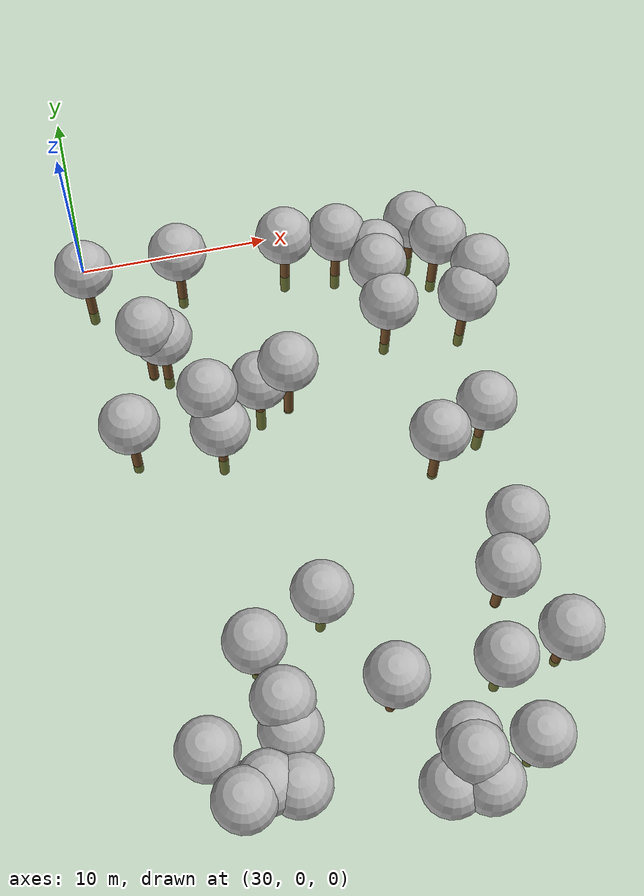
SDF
<sdf version="1.5">
 <world name="default">
  <model name="tree_simple473">
   <static>1</static>
   <link name="link">
    <pose>0 0 0.1 0 -0 0</pose>
    <collision name="collision_trunk">
     <pose>0 0 2 0 -0 0</pose>
     <geometry><cylinder><radius>0.25</radius><length>4</length></cylinder></geometry>
    </collision>
    <collision name="collision_treetop">
     <pose>0 0 5.2 0 -0 0</pose>
     <geometry><sphere><radius>1.5</radius></sphere></geometry>
    </collision>
    <visual name="trunk">
     <pose>0 0 2 0 -0 0</pose>
     <geometry><cylinder><radius>0.25</radius><length>4</length></cylinder></geometry>
     <material>
      <script>
       <uri>model://tree_simple/scripts</uri>
       <uri>model://tree_simple/materials/textures</uri>
       <name>TreeSimple/Trunk</name>
      </script>
     </material>
    </visual>
    <visual name="treetop">
     <pose>0 0 5.2 0 -0 0</pose>
     <geometry><sphere><radius>1.5</radius></sphere></geometry>
     <material>
      <script>
       <uri>model://tree_simple/scripts</uri>
       <uri>model://tree_simple/materials/textures</uri>
       <name>TreeSimple/Treetop</name>
      </script>
     </material>
    </visual>
   </link>
   <pose>35.3600050295 -12.4568326028 -1.7473180829373098 0 -0 0</pose>
  </model>
  <model name="tree_simple468">
   <static>1</static>
   <link name="link">
    <pose>0 0 0.1 0 -0 0</pose>
    <collision name="collision_trunk">
     <pose>0 0 2 0 -0 0</pose>
     <geometry><cylinder><radius>0.25</radius><length>4</length></cylinder></geometry>
    </collision>
    <collision name="collision_treetop">
     <pose>0 0 5.2 0 -0 0</pose>
     <geometry><sphere><radius>1.5</radius></sphere></geometry>
    </collision>
    <visual name="trunk">
     <pose>0 0 2 0 -0 0</pose>
     <geometry><cylinder><radius>0.25</radius><length>4</length></cylinder></geometry>
     <material>
      <script>
       <uri>model://tree_simple/scripts</uri>
       <uri>model://tree_simple/materials/textures</uri>
       <name>TreeSimple/Trunk</name>
      </script>
     </material>
    </visual>
    <visual name="treetop">
     <pose>0 0 5.2 0 -0 0</pose>
     <geometry><sphere><radius>1.5</radius></sphere></geometry>
     <material>
      <script>
       <uri>model://tree_simple/scripts</uri>
       <uri>model://tree_simple/materials/textures</uri>
       <name>TreeSimple/Treetop</name>
      </script>
     </material>
    </visual>
   </link>
   <pose>33.4354348071 -7.20044037788 -1.1774211655421292 0 -0 0</pose>
  </model>
  <model name="tree_simple461">
   <static>1</static>
   <link name="link">
    <pose>0 0 0.1 0 -0 0</pose>
    <collision name="collision_trunk">
     <pose>0 0 2 0 -0 0</pose>
     <geometry><cylinder><radius>0.25</radius><length>4</length></cylinder></geometry>
    </collision>
    <collision name="collision_treetop">
     <pose>0 0 5.2 0 -0 0</pose>
     <geometry><sphere><radius>1.5</radius></sphere></geometry>
    </collision>
    <visual name="trunk">
     <pose>0 0 2 0 -0 0</pose>
     <geometry><cylinder><radius>0.25</radius><length>4</length></cylinder></geometry>
     <material>
      <script>
       <uri>model://tree_simple/scripts</uri>
       <uri>model://tree_simple/materials/textures</uri>
       <name>TreeSimple/Trunk</name>
      </script>
     </material>
    </visual>
    <visual name="treetop">
     <pose>0 0 5.2 0 -0 0</pose>
     <geometry><sphere><radius>1.5</radius></sphere></geometry>
     <material>
      <script>
       <uri>model://tree_simple/scripts</uri>
       <uri>model://tree_simple/materials/textures</uri>
       <name>TreeSimple/Treetop</name>
      </script>
     </material>
    </visual>
   </link>
   <pose>48.4583895912 -13.8275705943 -1.654358973895734 0 -0 0</pose>
  </model>
  <model name="tree_simple400">
   <static>1</static>
   <link name="link">
    <pose>0 0 0.1 0 -0 0</pose>
    <collision name="collision_trunk">
     <pose>0 0 2 0 -0 0</pose>
     <geometry><cylinder><radius>0.25</radius><length>4</length></cylinder></geometry>
    </collision>
    <collision name="collision_treetop">
     <pose>0 0 5.2 0 -0 0</pose>
     <geometry><sphere><radius>1.5</radius></sphere></geometry>
    </collision>
    <visual name="trunk">
     <pose>0 0 2 0 -0 0</pose>
     <geometry><cylinder><radius>0.25</radius><length>4</length></cylinder></geometry>
     <material>
      <script>
       <uri>model://tree_simple/scripts</uri>
       <uri>model://tree_simple/materials/textures</uri>
       <name>TreeSimple/Trunk</name>
      </script>
     </material>
    </visual>
    <visual name="treetop">
     <pose>0 0 5.2 0 -0 0</pose>
     <geometry><sphere><radius>1.5</radius></sphere></geometry>
     <material>
      <script>
       <uri>model://tree_simple/scripts</uri>
       <uri>model://tree_simple/materials/textures</uri>
       <name>TreeSimple/Treetop</name>
      </script>
     </material>
    </visual>
   </link>
   <pose>43.2651902792 -29.893141503 -1.1628689047305 0 -0 0</pose>
  </model>
  <model name="tree_simple391">
   <static>1</static>
   <link name="link">
    <pose>0 0 0.1 0 -0 0</pose>
    <collision name="collision_trunk">
     <pose>0 0 2 0 -0 0</pose>
     <geometry><cylinder><radius>0.25</radius><length>4</length></cylinder></geometry>
    </collision>
    <collision name="collision_treetop">
     <pose>0 0 5.2 0 -0 0</pose>
     <geometry><sphere><radius>1.5</radius></sphere></geometry>
    </collision>
    <visual name="trunk">
     <pose>0 0 2 0 -0 0</pose>
     <geometry><cylinder><radius>0.25</radius><length>4</length></cylinder></geometry>
     <material>
      <script>
       <uri>model://tree_simple/scripts</uri>
       <uri>model://tree_simple/materials/textures</uri>
       <name>TreeSimple/Trunk</name>
      </script>
     </material>
    </visual>
    <visual name="treetop">
     <pose>0 0 5.2 0 -0 0</pose>
     <geometry><sphere><radius>1.5</radius></sphere></geometry>
     <material>
      <script>
       <uri>model://tree_simple/scripts</uri>
       <uri>model://tree_simple/materials/textures</uri>
       <name>TreeSimple/Treetop</name>
      </script>
     </material>
    </visual>
   </link>
   <pose>35.0521422103 -11.0450283788 -0.3370518035027943 0 -0 0</pose>
  </model>
  <model name="tree_simple390">
   <static>1</static>
   <link name="link">
    <pose>0 0 0.1 0 -0 0</pose>
    <collision name="collision_trunk">
     <pose>0 0 2 0 -0 0</pose>
     <geometry><cylinder><radius>0.25</radius><length>4</length></cylinder></geometry>
    </collision>
    <collision name="collision_treetop">
     <pose>0 0 5.2 0 -0 0</pose>
     <geometry><sphere><radius>1.5</radius></sphere></geometry>
    </collision>
    <visual name="trunk">
     <pose>0 0 2 0 -0 0</pose>
     <geometry><cylinder><radius>0.25</radius><length>4</length></cylinder></geometry>
     <material>
      <script>
       <uri>model://tree_simple/scripts</uri>
       <uri>model://tree_simple/materials/textures</uri>
       <name>TreeSimple/Trunk</name>
      </script>
     </material>
    </visual>
    <visual name="treetop">
     <pose>0 0 5.2 0 -0 0</pose>
     <geometry><sphere><radius>1.5</radius></sphere></geometry>
     <material>
      <script>
       <uri>model://tree_simple/scripts</uri>
       <uri>model://tree_simple/materials/textures</uri>
       <name>TreeSimple/Treetop</name>
      </script>
     </material>
    </visual>
   </link>
   <pose>34.8279648661 -23.7978261523 -0.8690335172781292 0 -0 0</pose>
  </model>
  <model name="tree_simple385">
   <static>1</static>
   <link name="link">
    <pose>0 0 0.1 0 -0 0</pose>
    <collision name="collision_trunk">
     <pose>0 0 2 0 -0 0</pose>
     <geometry><cylinder><radius>0.25</radius><length>4</length></cylinder></geometry>
    </collision>
    <collision name="collision_treetop">
     <pose>0 0 5.2 0 -0 0</pose>
     <geometry><sphere><radius>1.5</radius></sphere></geometry>
    </collision>
    <visual name="trunk">
     <pose>0 0 2 0 -0 0</pose>
     <geometry><cylinder><radius>0.25</radius><length>4</length></cylinder></geometry>
     <material>
      <script>
       <uri>model://tree_simple/scripts</uri>
       <uri>model://tree_simple/materials/textures</uri>
       <name>TreeSimple/Trunk</name>
      </script>
     </material>
    </visual>
    <visual name="treetop">
     <pose>0 0 5.2 0 -0 0</pose>
     <geometry><sphere><radius>1.5</radius></sphere></geometry>
     <material>
      <script>
       <uri>model://tree_simple/scripts</uri>
       <uri>model://tree_simple/materials/textures</uri>
       <name>TreeSimple/Treetop</name>
      </script>
     </material>
    </visual>
   </link>
   <pose>32.6946046779 -7.01468529962 -0.2769315704886326 0 -0 0</pose>
  </model>
  <model name="tree_simple380">
   <static>1</static>
   <link name="link">
    <pose>0 0 0.1 0 -0 0</pose>
    <collision name="collision_trunk">
     <pose>0 0 2 0 -0 0</pose>
     <geometry><cylinder><radius>0.25</radius><length>4</length></cylinder></geometry>
    </collision>
    <collision name="collision_treetop">
     <pose>0 0 5.2 0 -0 0</pose>
     <geometry><sphere><radius>1.5</radius></sphere></geometry>
    </collision>
    <visual name="trunk">
     <pose>0 0 2 0 -0 0</pose>
     <geometry><cylinder><radius>0.25</radius><length>4</length></cylinder></geometry>
     <material>
      <script>
       <uri>model://tree_simple/scripts</uri>
       <uri>model://tree_simple/materials/textures</uri>
       <name>TreeSimple/Trunk</name>
      </script>
     </material>
    </visual>
    <visual name="treetop">
     <pose>0 0 5.2 0 -0 0</pose>
     <geometry><sphere><radius>1.5</radius></sphere></geometry>
     <material>
      <script>
       <uri>model://tree_simple/scripts</uri>
       <uri>model://tree_simple/materials/textures</uri>
       <name>TreeSimple/Treetop</name>
      </script>
     </material>
    </visual>
   </link>
   <pose>49.0222625073 -7.79616728684 -1.293689427197087 0 -0 0</pose>
  </model>
  <model name="tree_simple379">
   <static>1</static>
   <link name="link">
    <pose>0 0 0.1 0 -0 0</pose>
    <collision name="collision_trunk">
     <pose>0 0 2 0 -0 0</pose>
     <geometry><cylinder><radius>0.25</radius><length>4</length></cylinder></geometry>
    </collision>
    <collision name="collision_treetop">
     <pose>0 0 5.2 0 -0 0</pose>
     <geometry><sphere><radius>1.5</radius></sphere></geometry>
    </collision>
    <visual name="trunk">
     <pose>0 0 2 0 -0 0</pose>
     <geometry><cylinder><radius>0.25</radius><length>4</length></cylinder></geometry>
     <material>
      <script>
       <uri>model://tree_simple/scripts</uri>
       <uri>model://tree_simple/materials/textures</uri>
       <name>TreeSimple/Trunk</name>
      </script>
     </material>
    </visual>
    <visual name="treetop">
     <pose>0 0 5.2 0 -0 0</pose>
     <geometry><sphere><radius>1.5</radius></sphere></geometry>
     <material>
      <script>
       <uri>model://tree_simple/scripts</uri>
       <uri>model://tree_simple/materials/textures</uri>
       <name>TreeSimple/Treetop</name>
      </script>
     </material>
    </visual>
   </link>
   <pose>35.6338366469 -27.9469397224 -1.4886823676596321 0 -0 0</pose>
  </model>
  <model name="tree_simple374">
   <static>1</static>
   <link name="link">
    <pose>0 0 0.1 0 -0 0</pose>
    <collision name="collision_trunk">
     <pose>0 0 2 0 -0 0</pose>
     <geometry><cylinder><radius>0.25</radius><length>4</length></cylinder></geometry>
    </collision>
    <collision name="collision_treetop">
     <pose>0 0 5.2 0 -0 0</pose>
     <geometry><sphere><radius>1.5</radius></sphere></geometry>
    </collision>
    <visual name="trunk">
     <pose>0 0 2 0 -0 0</pose>
     <geometry><cylinder><radius>0.25</radius><length>4</length></cylinder></geometry>
     <material>
      <script>
       <uri>model://tree_simple/scripts</uri>
       <uri>model://tree_simple/materials/textures</uri>
       <name>TreeSimple/Trunk</name>
      </script>
     </material>
    </visual>
    <visual name="treetop">
     <pose>0 0 5.2 0 -0 0</pose>
     <geometry><sphere><radius>1.5</radius></sphere></geometry>
     <material>
      <script>
       <uri>model://tree_simple/scripts</uri>
       <uri>model://tree_simple/materials/textures</uri>
       <name>TreeSimple/Treetop</name>
      </script>
     </material>
    </visual>
   </link>
   <pose>45.5880490305 -15.4743351493 -0.4629393614431617 0 -0 0</pose>
  </model>
  <model name="tree_simple361">
   <static>1</static>
   <link name="link">
    <pose>0 0 0.1 0 -0 0</pose>
    <collision name="collision_trunk">
     <pose>0 0 2 0 -0 0</pose>
     <geometry><cylinder><radius>0.25</radius><length>4</length></cylinder></geometry>
    </collision>
    <collision name="collision_treetop">
     <pose>0 0 5.2 0 -0 0</pose>
     <geometry><sphere><radius>1.5</radius></sphere></geometry>
    </collision>
    <visual name="trunk">
     <pose>0 0 2 0 -0 0</pose>
     <geometry><cylinder><radius>0.25</radius><length>4</length></cylinder></geometry>
     <material>
      <script>
       <uri>model://tree_simple/scripts</uri>
       <uri>model://tree_simple/materials/textures</uri>
       <name>TreeSimple/Trunk</name>
      </script>
     </material>
    </visual>
    <visual name="treetop">
     <pose>0 0 5.2 0 -0 0</pose>
     <geometry><sphere><radius>1.5</radius></sphere></geometry>
     <material>
      <script>
       <uri>model://tree_simple/scripts</uri>
       <uri>model://tree_simple/materials/textures</uri>
       <name>TreeSimple/Treetop</name>
      </script>
     </material>
    </visual>
   </link>
   <pose>35.5366757962 -26.7239082098 -0.6757971522444024 0 -0 0</pose>
  </model>
  <model name="tree_simple352">
   <static>1</static>
   <link name="link">
    <pose>0 0 0.1 0 -0 0</pose>
    <collision name="collision_trunk">
     <pose>0 0 2 0 -0 0</pose>
     <geometry><cylinder><radius>0.25</radius><length>4</length></cylinder></geometry>
    </collision>
    <collision name="collision_treetop">
     <pose>0 0 5.2 0 -0 0</pose>
     <geometry><sphere><radius>1.5</radius></sphere></geometry>
    </collision>
    <visual name="trunk">
     <pose>0 0 2 0 -0 0</pose>
     <geometry><cylinder><radius>0.25</radius><length>4</length></cylinder></geometry>
     <material>
      <script>
       <uri>model://tree_simple/scripts</uri>
       <uri>model://tree_simple/materials/textures</uri>
       <name>TreeSimple/Trunk</name>
      </script>
     </material>
    </visual>
    <visual name="treetop">
     <pose>0 0 5.2 0 -0 0</pose>
     <geometry><sphere><radius>1.5</radius></sphere></geometry>
     <material>
      <script>
       <uri>model://tree_simple/scripts</uri>
       <uri>model://tree_simple/materials/textures</uri>
       <name>TreeSimple/Treetop</name>
      </script>
     </material>
    </visual>
   </link>
   <pose>37.7714253308 -10.085576638 -2.2345839710820794 0 -0 0</pose>
  </model>
  <model name="tree_simple330">
   <static>1</static>
   <link name="link">
    <pose>0 0 0.1 0 -0 0</pose>
    <collision name="collision_trunk">
     <pose>0 0 2 0 -0 0</pose>
     <geometry><cylinder><radius>0.25</radius><length>4</length></cylinder></geometry>
    </collision>
    <collision name="collision_treetop">
     <pose>0 0 5.2 0 -0 0</pose>
     <geometry><sphere><radius>1.5</radius></sphere></geometry>
    </collision>
    <visual name="trunk">
     <pose>0 0 2 0 -0 0</pose>
     <geometry><cylinder><radius>0.25</radius><length>4</length></cylinder></geometry>
     <material>
      <script>
       <uri>model://tree_simple/scripts</uri>
       <uri>model://tree_simple/materials/textures</uri>
       <name>TreeSimple/Trunk</name>
      </script>
     </material>
    </visual>
    <visual name="treetop">
     <pose>0 0 5.2 0 -0 0</pose>
     <geometry><sphere><radius>1.5</radius></sphere></geometry>
     <material>
      <script>
       <uri>model://tree_simple/scripts</uri>
       <uri>model://tree_simple/materials/textures</uri>
       <name>TreeSimple/Treetop</name>
      </script>
     </material>
    </visual>
   </link>
   <pose>46.6176543064 -30.3534647409 -1.9145014034886074 0 -0 0</pose>
  </model>
  <model name="tree_simple321">
   <static>1</static>
   <link name="link">
    <pose>0 0 0.1 0 -0 0</pose>
    <collision name="collision_trunk">
     <pose>0 0 2 0 -0 0</pose>
     <geometry><cylinder><radius>0.25</radius><length>4</length></cylinder></geometry>
    </collision>
    <collision name="collision_treetop">
     <pose>0 0 5.2 0 -0 0</pose>
     <geometry><sphere><radius>1.5</radius></sphere></geometry>
    </collision>
    <visual name="trunk">
     <pose>0 0 2 0 -0 0</pose>
     <geometry><cylinder><radius>0.25</radius><length>4</length></cylinder></geometry>
     <material>
      <script>
       <uri>model://tree_simple/scripts</uri>
       <uri>model://tree_simple/materials/textures</uri>
       <name>TreeSimple/Trunk</name>
      </script>
     </material>
    </visual>
    <visual name="treetop">
     <pose>0 0 5.2 0 -0 0</pose>
     <geometry><sphere><radius>1.5</radius></sphere></geometry>
     <material>
      <script>
       <uri>model://tree_simple/scripts</uri>
       <uri>model://tree_simple/materials/textures</uri>
       <name>TreeSimple/Treetop</name>
      </script>
     </material>
    </visual>
   </link>
   <pose>42.046648374 -31.7938593585 -1.566815543684457 0 -0 0</pose>
  </model>
  <model name="tree_simple298">
   <static>1</static>
   <link name="link">
    <pose>0 0 0.1 0 -0 0</pose>
    <collision name="collision_trunk">
     <pose>0 0 2 0 -0 0</pose>
     <geometry><cylinder><radius>0.25</radius><length>4</length></cylinder></geometry>
    </collision>
    <collision name="collision_treetop">
     <pose>0 0 5.2 0 -0 0</pose>
     <geometry><sphere><radius>1.5</radius></sphere></geometry>
    </collision>
    <visual name="trunk">
     <pose>0 0 2 0 -0 0</pose>
     <geometry><cylinder><radius>0.25</radius><length>4</length></cylinder></geometry>
     <material>
      <script>
       <uri>model://tree_simple/scripts</uri>
       <uri>model://tree_simple/materials/textures</uri>
       <name>TreeSimple/Trunk</name>
      </script>
     </material>
    </visual>
    <visual name="treetop">
     <pose>0 0 5.2 0 -0 0</pose>
     <geometry><sphere><radius>1.5</radius></sphere></geometry>
     <material>
      <script>
       <uri>model://tree_simple/scripts</uri>
       <uri>model://tree_simple/materials/textures</uri>
       <name>TreeSimple/Treetop</name>
      </script>
     </material>
    </visual>
   </link>
   <pose>33.2901714534 -30.1267743678 -2.5 0 -0 0</pose>
  </model>
  <model name="tree_simple278">
   <static>1</static>
   <link name="link">
    <pose>0 0 0.1 0 -0 0</pose>
    <collision name="collision_trunk">
     <pose>0 0 2 0 -0 0</pose>
     <geometry><cylinder><radius>0.25</radius><length>4</length></cylinder></geometry>
    </collision>
    <collision name="collision_treetop">
     <pose>0 0 5.2 0 -0 0</pose>
     <geometry><sphere><radius>1.5</radius></sphere></geometry>
    </collision>
    <visual name="trunk">
     <pose>0 0 2 0 -0 0</pose>
     <geometry><cylinder><radius>0.25</radius><length>4</length></cylinder></geometry>
     <material>
      <script>
       <uri>model://tree_simple/scripts</uri>
       <uri>model://tree_simple/materials/textures</uri>
       <name>TreeSimple/Trunk</name>
      </script>
     </material>
    </visual>
    <visual name="treetop">
     <pose>0 0 5.2 0 -0 0</pose>
     <geometry><sphere><radius>1.5</radius></sphere></geometry>
     <material>
      <script>
       <uri>model://tree_simple/scripts</uri>
       <uri>model://tree_simple/materials/textures</uri>
       <name>TreeSimple/Treetop</name>
      </script>
     </material>
    </visual>
   </link>
   <pose>38.4116061074 -21.7404675264 -1.9543165605564847 0 -0 0</pose>
  </model>
  <model name="tree_simple263">
   <static>1</static>
   <link name="link">
    <pose>0 0 0.1 0 -0 0</pose>
    <collision name="collision_trunk">
     <pose>0 0 2 0 -0 0</pose>
     <geometry><cylinder><radius>0.25</radius><length>4</length></cylinder></geometry>
    </collision>
    <collision name="collision_treetop">
     <pose>0 0 5.2 0 -0 0</pose>
     <geometry><sphere><radius>1.5</radius></sphere></geometry>
    </collision>
    <visual name="trunk">
     <pose>0 0 2 0 -0 0</pose>
     <geometry><cylinder><radius>0.25</radius><length>4</length></cylinder></geometry>
     <material>
      <script>
       <uri>model://tree_simple/scripts</uri>
       <uri>model://tree_simple/materials/textures</uri>
       <name>TreeSimple/Trunk</name>
      </script>
     </material>
    </visual>
    <visual name="treetop">
     <pose>0 0 5.2 0 -0 0</pose>
     <geometry><sphere><radius>1.5</radius></sphere></geometry>
     <material>
      <script>
       <uri>model://tree_simple/scripts</uri>
       <uri>model://tree_simple/materials/textures</uri>
       <name>TreeSimple/Treetop</name>
      </script>
     </material>
    </visual>
   </link>
   <pose>40.6294575453 -26.8945764261 -0.0 0 -0 0</pose>
  </model>
  <model name="tree_simple244">
   <static>1</static>
   <link name="link">
    <pose>0 0 0.1 0 -0 0</pose>
    <collision name="collision_trunk">
     <pose>0 0 2 0 -0 0</pose>
     <geometry><cylinder><radius>0.25</radius><length>4</length></cylinder></geometry>
    </collision>
    <collision name="collision_treetop">
     <pose>0 0 5.2 0 -0 0</pose>
     <geometry><sphere><radius>1.5</radius></sphere></geometry>
    </collision>
    <visual name="trunk">
     <pose>0 0 2 0 -0 0</pose>
     <geometry><cylinder><radius>0.25</radius><length>4</length></cylinder></geometry>
     <material>
      <script>
       <uri>model://tree_simple/scripts</uri>
       <uri>model://tree_simple/materials/textures</uri>
       <name>TreeSimple/Trunk</name>
      </script>
     </material>
    </visual>
    <visual name="treetop">
     <pose>0 0 5.2 0 -0 0</pose>
     <geometry><sphere><radius>1.5</radius></sphere></geometry>
     <material>
      <script>
       <uri>model://tree_simple/scripts</uri>
       <uri>model://tree_simple/materials/textures</uri>
       <name>TreeSimple/Treetop</name>
      </script>
     </material>
    </visual>
   </link>
   <pose>45.1720023685 -3.9344800414 -1.8070452686765814 0 -0 0</pose>
  </model>
  <model name="tree_simple243">
   <static>1</static>
   <link name="link">
    <pose>0 0 0.1 0 -0 0</pose>
    <collision name="collision_trunk">
     <pose>0 0 2 0 -0 0</pose>
     <geometry><cylinder><radius>0.25</radius><length>4</length></cylinder></geometry>
    </collision>
    <collision name="collision_treetop">
     <pose>0 0 5.2 0 -0 0</pose>
     <geometry><sphere><radius>1.5</radius></sphere></geometry>
    </collision>
    <visual name="trunk">
     <pose>0 0 2 0 -0 0</pose>
     <geometry><cylinder><radius>0.25</radius><length>4</length></cylinder></geometry>
     <material>
      <script>
       <uri>model://tree_simple/scripts</uri>
       <uri>model://tree_simple/materials/textures</uri>
       <name>TreeSimple/Trunk</name>
      </script>
     </material>
    </visual>
    <visual name="treetop">
     <pose>0 0 5.2 0 -0 0</pose>
     <geometry><sphere><radius>1.5</radius></sphere></geometry>
     <material>
      <script>
       <uri>model://tree_simple/scripts</uri>
       <uri>model://tree_simple/materials/textures</uri>
       <name>TreeSimple/Treetop</name>
      </script>
     </material>
    </visual>
   </link>
   <pose>48.9656449897 -26.1871742827 -0.7073497209825561 0 -0 0</pose>
  </model>
  <model name="tree_simple235">
   <static>1</static>
   <link name="link">
    <pose>0 0 0.1 0 -0 0</pose>
    <collision name="collision_trunk">
     <pose>0 0 2 0 -0 0</pose>
     <geometry><cylinder><radius>0.25</radius><length>4</length></cylinder></geometry>
    </collision>
    <collision name="collision_treetop">
     <pose>0 0 5.2 0 -0 0</pose>
     <geometry><sphere><radius>1.5</radius></sphere></geometry>
    </collision>
    <visual name="trunk">
     <pose>0 0 2 0 -0 0</pose>
     <geometry><cylinder><radius>0.25</radius><length>4</length></cylinder></geometry>
     <material>
      <script>
       <uri>model://tree_simple/scripts</uri>
       <uri>model://tree_simple/materials/textures</uri>
       <name>TreeSimple/Trunk</name>
      </script>
     </material>
    </visual>
    <visual name="treetop">
     <pose>0 0 5.2 0 -0 0</pose>
     <geometry><sphere><radius>1.5</radius></sphere></geometry>
     <material>
      <script>
       <uri>model://tree_simple/scripts</uri>
       <uri>model://tree_simple/materials/textures</uri>
       <name>TreeSimple/Treetop</name>
      </script>
     </material>
    </visual>
   </link>
   <pose>47.4649473564 -2.51877980815 -1.9658300410565785 0 -0 0</pose>
  </model>
  <model name="tree_simple210">
   <static>1</static>
   <link name="link">
    <pose>0 0 0.1 0 -0 0</pose>
    <collision name="collision_trunk">
     <pose>0 0 2 0 -0 0</pose>
     <geometry><cylinder><radius>0.25</radius><length>4</length></cylinder></geometry>
    </collision>
    <collision name="collision_treetop">
     <pose>0 0 5.2 0 -0 0</pose>
     <geometry><sphere><radius>1.5</radius></sphere></geometry>
    </collision>
    <visual name="trunk">
     <pose>0 0 2 0 -0 0</pose>
     <geometry><cylinder><radius>0.25</radius><length>4</length></cylinder></geometry>
     <material>
      <script>
       <uri>model://tree_simple/scripts</uri>
       <uri>model://tree_simple/materials/textures</uri>
       <name>TreeSimple/Trunk</name>
      </script>
     </material>
    </visual>
    <visual name="treetop">
     <pose>0 0 5.2 0 -0 0</pose>
     <geometry><sphere><radius>1.5</radius></sphere></geometry>
     <material>
      <script>
       <uri>model://tree_simple/scripts</uri>
       <uri>model://tree_simple/materials/textures</uri>
       <name>TreeSimple/Treetop</name>
      </script>
     </material>
    </visual>
   </link>
   <pose>49.9611404215 -6.54237160605 -0.8031616637682835 0 -0 0</pose>
  </model>
  <model name="tree_simple206">
   <static>1</static>
   <link name="link">
    <pose>0 0 0.1 0 -0 0</pose>
    <collision name="collision_trunk">
     <pose>0 0 2 0 -0 0</pose>
     <geometry><cylinder><radius>0.25</radius><length>4</length></cylinder></geometry>
    </collision>
    <collision name="collision_treetop">
     <pose>0 0 5.2 0 -0 0</pose>
     <geometry><sphere><radius>1.5</radius></sphere></geometry>
    </collision>
    <visual name="trunk">
     <pose>0 0 2 0 -0 0</pose>
     <geometry><cylinder><radius>0.25</radius><length>4</length></cylinder></geometry>
     <material>
      <script>
       <uri>model://tree_simple/scripts</uri>
       <uri>model://tree_simple/materials/textures</uri>
       <name>TreeSimple/Trunk</name>
      </script>
     </material>
    </visual>
    <visual name="treetop">
     <pose>0 0 5.2 0 -0 0</pose>
     <geometry><sphere><radius>1.5</radius></sphere></geometry>
     <material>
      <script>
       <uri>model://tree_simple/scripts</uri>
       <uri>model://tree_simple/materials/textures</uri>
       <name>TreeSimple/Treetop</name>
      </script>
     </material>
    </visual>
   </link>
   <pose>46.8540816615 -22.8682209639 -0.2213637596622262 0 -0 0</pose>
  </model>
  <model name="tree_simple204">
   <static>1</static>
   <link name="link">
    <pose>0 0 0.1 0 -0 0</pose>
    <collision name="collision_trunk">
     <pose>0 0 2 0 -0 0</pose>
     <geometry><cylinder><radius>0.25</radius><length>4</length></cylinder></geometry>
    </collision>
    <collision name="collision_treetop">
     <pose>0 0 5.2 0 -0 0</pose>
     <geometry><sphere><radius>1.5</radius></sphere></geometry>
    </collision>
    <visual name="trunk">
     <pose>0 0 2 0 -0 0</pose>
     <geometry><cylinder><radius>0.25</radius><length>4</length></cylinder></geometry>
     <material>
      <script>
       <uri>model://tree_simple/scripts</uri>
       <uri>model://tree_simple/materials/textures</uri>
       <name>TreeSimple/Trunk</name>
      </script>
     </material>
    </visual>
    <visual name="treetop">
     <pose>0 0 5.2 0 -0 0</pose>
     <geometry><sphere><radius>1.5</radius></sphere></geometry>
     <material>
      <script>
       <uri>model://tree_simple/scripts</uri>
       <uri>model://tree_simple/materials/textures</uri>
       <name>TreeSimple/Treetop</name>
      </script>
     </material>
    </visual>
   </link>
   <pose>40.6572947186 -2.37352514754 -1.5443701855767702 0 -0 0</pose>
  </model>
  <model name="tree_simple203">
   <static>1</static>
   <link name="link">
    <pose>0 0 0.1 0 -0 0</pose>
    <collision name="collision_trunk">
     <pose>0 0 2 0 -0 0</pose>
     <geometry><cylinder><radius>0.25</radius><length>4</length></cylinder></geometry>
    </collision>
    <collision name="collision_treetop">
     <pose>0 0 5.2 0 -0 0</pose>
     <geometry><sphere><radius>1.5</radius></sphere></geometry>
    </collision>
    <visual name="trunk">
     <pose>0 0 2 0 -0 0</pose>
     <geometry><cylinder><radius>0.25</radius><length>4</length></cylinder></geometry>
     <material>
      <script>
       <uri>model://tree_simple/scripts</uri>
       <uri>model://tree_simple/materials/textures</uri>
       <name>TreeSimple/Trunk</name>
      </script>
     </material>
    </visual>
    <visual name="treetop">
     <pose>0 0 5.2 0 -0 0</pose>
     <geometry><sphere><radius>1.5</radius></sphere></geometry>
     <material>
      <script>
       <uri>model://tree_simple/scripts</uri>
       <uri>model://tree_simple/materials/textures</uri>
       <name>TreeSimple/Treetop</name>
      </script>
     </material>
    </visual>
   </link>
   <pose>48.3599333119 -4.25982043144 -1.144564380156025 0 -0 0</pose>
  </model>
  <model name="tree_simple192">
   <static>1</static>
   <link name="link">
    <pose>0 0 0.1 0 -0 0</pose>
    <collision name="collision_trunk">
     <pose>0 0 2 0 -0 0</pose>
     <geometry><cylinder><radius>0.25</radius><length>4</length></cylinder></geometry>
    </collision>
    <collision name="collision_treetop">
     <pose>0 0 5.2 0 -0 0</pose>
     <geometry><sphere><radius>1.5</radius></sphere></geometry>
    </collision>
    <visual name="trunk">
     <pose>0 0 2 0 -0 0</pose>
     <geometry><cylinder><radius>0.25</radius><length>4</length></cylinder></geometry>
     <material>
      <script>
       <uri>model://tree_simple/scripts</uri>
       <uri>model://tree_simple/materials/textures</uri>
       <name>TreeSimple/Trunk</name>
      </script>
     </material>
    </visual>
    <visual name="treetop">
     <pose>0 0 5.2 0 -0 0</pose>
     <geometry><sphere><radius>1.5</radius></sphere></geometry>
     <material>
      <script>
       <uri>model://tree_simple/scripts</uri>
       <uri>model://tree_simple/materials/textures</uri>
       <name>TreeSimple/Treetop</name>
      </script>
     </material>
    </visual>
   </link>
   <pose>39.1897553286 -10.376920586 -0.3207802399410533 0 -0 0</pose>
  </model>
  <model name="tree_simple185">
   <static>1</static>
   <link name="link">
    <pose>0 0 0.1 0 -0 0</pose>
    <collision name="collision_trunk">
     <pose>0 0 2 0 -0 0</pose>
     <geometry><cylinder><radius>0.25</radius><length>4</length></cylinder></geometry>
    </collision>
    <collision name="collision_treetop">
     <pose>0 0 5.2 0 -0 0</pose>
     <geometry><sphere><radius>1.5</radius></sphere></geometry>
    </collision>
    <visual name="trunk">
     <pose>0 0 2 0 -0 0</pose>
     <geometry><cylinder><radius>0.25</radius><length>4</length></cylinder></geometry>
     <material>
      <script>
       <uri>model://tree_simple/scripts</uri>
       <uri>model://tree_simple/materials/textures</uri>
       <name>TreeSimple/Trunk</name>
      </script>
     </material>
    </visual>
    <visual name="treetop">
     <pose>0 0 5.2 0 -0 0</pose>
     <geometry><sphere><radius>1.5</radius></sphere></geometry>
     <material>
      <script>
       <uri>model://tree_simple/scripts</uri>
       <uri>model://tree_simple/materials/textures</uri>
       <name>TreeSimple/Treetop</name>
      </script>
     </material>
    </visual>
   </link>
   <pose>48.1272235893 -20.3232479012 -1.044490679994767 0 -0 0</pose>
  </model>
  <model name="tree_simple179">
   <static>1</static>
   <link name="link">
    <pose>0 0 0.1 0 -0 0</pose>
    <collision name="collision_trunk">
     <pose>0 0 2 0 -0 0</pose>
     <geometry><cylinder><radius>0.25</radius><length>4</length></cylinder></geometry>
    </collision>
    <collision name="collision_treetop">
     <pose>0 0 5.2 0 -0 0</pose>
     <geometry><sphere><radius>1.5</radius></sphere></geometry>
    </collision>
    <visual name="trunk">
     <pose>0 0 2 0 -0 0</pose>
     <geometry><cylinder><radius>0.25</radius><length>4</length></cylinder></geometry>
     <material>
      <script>
       <uri>model://tree_simple/scripts</uri>
       <uri>model://tree_simple/materials/textures</uri>
       <name>TreeSimple/Trunk</name>
      </script>
     </material>
    </visual>
    <visual name="treetop">
     <pose>0 0 5.2 0 -0 0</pose>
     <geometry><sphere><radius>1.5</radius></sphere></geometry>
     <material>
      <script>
       <uri>model://tree_simple/scripts</uri>
       <uri>model://tree_simple/materials/textures</uri>
       <name>TreeSimple/Treetop</name>
      </script>
     </material>
    </visual>
   </link>
   <pose>33.0376036796 -30.7285936232 -0.7318937390602144 0 -0 0</pose>
  </model>
  <model name="tree_simple137">
   <static>1</static>
   <link name="link">
    <pose>0 0 0.1 0 -0 0</pose>
    <collision name="collision_trunk">
     <pose>0 0 2 0 -0 0</pose>
     <geometry><cylinder><radius>0.25</radius><length>4</length></cylinder></geometry>
    </collision>
    <collision name="collision_treetop">
     <pose>0 0 5.2 0 -0 0</pose>
     <geometry><sphere><radius>1.5</radius></sphere></geometry>
    </collision>
    <visual name="trunk">
     <pose>0 0 2 0 -0 0</pose>
     <geometry><cylinder><radius>0.25</radius><length>4</length></cylinder></geometry>
     <material>
      <script>
       <uri>model://tree_simple/scripts</uri>
       <uri>model://tree_simple/materials/textures</uri>
       <name>TreeSimple/Trunk</name>
      </script>
     </material>
    </visual>
    <visual name="treetop">
     <pose>0 0 5.2 0 -0 0</pose>
     <geometry><sphere><radius>1.5</radius></sphere></geometry>
     <material>
      <script>
       <uri>model://tree_simple/scripts</uri>
       <uri>model://tree_simple/materials/textures</uri>
       <name>TreeSimple/Treetop</name>
      </script>
     </material>
    </visual>
   </link>
   <pose>43.7452610824 -32.0584108729 -1.3314792482820106 0 -0 0</pose>
  </model>
  <model name="tree_simple133">
   <static>1</static>
   <link name="link">
    <pose>0 0 0.1 0 -0 0</pose>
    <collision name="collision_trunk">
     <pose>0 0 2 0 -0 0</pose>
     <geometry><cylinder><radius>0.25</radius><length>4</length></cylinder></geometry>
    </collision>
    <collision name="collision_treetop">
     <pose>0 0 5.2 0 -0 0</pose>
     <geometry><sphere><radius>1.5</radius></sphere></geometry>
    </collision>
    <visual name="trunk">
     <pose>0 0 2 0 -0 0</pose>
     <geometry><cylinder><radius>0.25</radius><length>4</length></cylinder></geometry>
     <material>
      <script>
       <uri>model://tree_simple/scripts</uri>
       <uri>model://tree_simple/materials/textures</uri>
       <name>TreeSimple/Trunk</name>
      </script>
     </material>
    </visual>
    <visual name="treetop">
     <pose>0 0 5.2 0 -0 0</pose>
     <geometry><sphere><radius>1.5</radius></sphere></geometry>
     <material>
      <script>
       <uri>model://tree_simple/scripts</uri>
       <uri>model://tree_simple/materials/textures</uri>
       <name>TreeSimple/Treetop</name>
      </script>
     </material>
    </visual>
   </link>
   <pose>34.1791859659 -30.0610700111 -1.3297834117660103 0 -0 0</pose>
  </model>
  <model name="tree_simple128">
   <static>1</static>
   <link name="link">
    <pose>0 0 0.1 0 -0 0</pose>
    <collision name="collision_trunk">
     <pose>0 0 2 0 -0 0</pose>
     <geometry><cylinder><radius>0.25</radius><length>4</length></cylinder></geometry>
    </collision>
    <collision name="collision_treetop">
     <pose>0 0 5.2 0 -0 0</pose>
     <geometry><sphere><radius>1.5</radius></sphere></geometry>
    </collision>
    <visual name="trunk">
     <pose>0 0 2 0 -0 0</pose>
     <geometry><cylinder><radius>0.25</radius><length>4</length></cylinder></geometry>
     <material>
      <script>
       <uri>model://tree_simple/scripts</uri>
       <uri>model://tree_simple/materials/textures</uri>
       <name>TreeSimple/Trunk</name>
      </script>
     </material>
    </visual>
    <visual name="treetop">
     <pose>0 0 5.2 0 -0 0</pose>
     <geometry><sphere><radius>1.5</radius></sphere></geometry>
     <material>
      <script>
       <uri>model://tree_simple/scripts</uri>
       <uri>model://tree_simple/materials/textures</uri>
       <name>TreeSimple/Treetop</name>
      </script>
     </material>
    </visual>
   </link>
   <pose>45.9201829733 -26.5855260125 -1.4635282377269554 0 -0 0</pose>
  </model>
  <model name="tree_simple118">
   <static>1</static>
   <link name="link">
    <pose>0 0 0.1 0 -0 0</pose>
    <collision name="collision_trunk">
     <pose>0 0 2 0 -0 0</pose>
     <geometry><cylinder><radius>0.25</radius><length>4</length></cylinder></geometry>
    </collision>
    <collision name="collision_treetop">
     <pose>0 0 5.2 0 -0 0</pose>
     <geometry><sphere><radius>1.5</radius></sphere></geometry>
    </collision>
    <visual name="trunk">
     <pose>0 0 2 0 -0 0</pose>
     <geometry><cylinder><radius>0.25</radius><length>4</length></cylinder></geometry>
     <material>
      <script>
       <uri>model://tree_simple/scripts</uri>
       <uri>model://tree_simple/materials/textures</uri>
       <name>TreeSimple/Trunk</name>
      </script>
     </material>
    </visual>
    <visual name="treetop">
     <pose>0 0 5.2 0 -0 0</pose>
     <geometry><sphere><radius>1.5</radius></sphere></geometry>
     <material>
      <script>
       <uri>model://tree_simple/scripts</uri>
       <uri>model://tree_simple/materials/textures</uri>
       <name>TreeSimple/Treetop</name>
      </script>
     </material>
    </visual>
   </link>
   <pose>35.015129688 -2.52683434866 -1.085177907504593 0 -0 0</pose>
  </model>
  <model name="tree_simple70">
   <static>1</static>
   <link name="link">
    <pose>0 0 0.1 0 -0 0</pose>
    <collision name="collision_trunk">
     <pose>0 0 2 0 -0 0</pose>
     <geometry><cylinder><radius>0.25</radius><length>4</length></cylinder></geometry>
    </collision>
    <collision name="collision_treetop">
     <pose>0 0 5.2 0 -0 0</pose>
     <geometry><sphere><radius>1.5</radius></sphere></geometry>
    </collision>
    <visual name="trunk">
     <pose>0 0 2 0 -0 0</pose>
     <geometry><cylinder><radius>0.25</radius><length>4</length></cylinder></geometry>
     <material>
      <script>
       <uri>model://tree_simple/scripts</uri>
       <uri>model://tree_simple/materials/textures</uri>
       <name>TreeSimple/Trunk</name>
      </script>
     </material>
    </visual>
    <visual name="treetop">
     <pose>0 0 5.2 0 -0 0</pose>
     <geometry><sphere><radius>1.5</radius></sphere></geometry>
     <material>
      <script>
       <uri>model://tree_simple/scripts</uri>
       <uri>model://tree_simple/materials/textures</uri>
       <name>TreeSimple/Treetop</name>
      </script>
     </material>
    </visual>
   </link>
   <pose>30.1542629043 -2.46185450146 -1.2463038486777338 0 -0 0</pose>
  </model>
  <model name="tree_simple68">
   <static>1</static>
   <link name="link">
    <pose>0 0 0.1 0 -0 0</pose>
    <collision name="collision_trunk">
     <pose>0 0 2 0 -0 0</pose>
     <geometry><cylinder><radius>0.25</radius><length>4</length></cylinder></geometry>
    </collision>
    <collision name="collision_treetop">
     <pose>0 0 5.2 0 -0 0</pose>
     <geometry><sphere><radius>1.5</radius></sphere></geometry>
    </collision>
    <visual name="trunk">
     <pose>0 0 2 0 -0 0</pose>
     <geometry><cylinder><radius>0.25</radius><length>4</length></cylinder></geometry>
     <material>
      <script>
       <uri>model://tree_simple/scripts</uri>
       <uri>model://tree_simple/materials/textures</uri>
       <name>TreeSimple/Trunk</name>
      </script>
     </material>
    </visual>
    <visual name="treetop">
     <pose>0 0 5.2 0 -0 0</pose>
     <geometry><sphere><radius>1.5</radius></sphere></geometry>
     <material>
      <script>
       <uri>model://tree_simple/scripts</uri>
       <uri>model://tree_simple/materials/textures</uri>
       <name>TreeSimple/Treetop</name>
      </script>
     </material>
    </visual>
   </link>
   <pose>43.3405594591 -2.82078180006 -1.4370387644488094 0 -0 0</pose>
  </model>
  <model name="tree_simple63">
   <static>1</static>
   <link name="link">
    <pose>0 0 0.1 0 -0 0</pose>
    <collision name="collision_trunk">
     <pose>0 0 2 0 -0 0</pose>
     <geometry><cylinder><radius>0.25</radius><length>4</length></cylinder></geometry>
    </collision>
    <collision name="collision_treetop">
     <pose>0 0 5.2 0 -0 0</pose>
     <geometry><sphere><radius>1.5</radius></sphere></geometry>
    </collision>
    <visual name="trunk">
     <pose>0 0 2 0 -0 0</pose>
     <geometry><cylinder><radius>0.25</radius><length>4</length></cylinder></geometry>
     <material>
      <script>
       <uri>model://tree_simple/scripts</uri>
       <uri>model://tree_simple/materials/textures</uri>
       <name>TreeSimple/Trunk</name>
      </script>
     </material>
    </visual>
    <visual name="treetop">
     <pose>0 0 5.2 0 -0 0</pose>
     <geometry><sphere><radius>1.5</radius></sphere></geometry>
     <material>
      <script>
       <uri>model://tree_simple/scripts</uri>
       <uri>model://tree_simple/materials/textures</uri>
       <name>TreeSimple/Treetop</name>
      </script>
     </material>
    </visual>
   </link>
   <pose>31.040163495 -11.8389088534 -0.8992835102340949 0 -0 0</pose>
  </model>
  <model name="tree_simple57">
   <static>1</static>
   <link name="link">
    <pose>0 0 0.1 0 -0 0</pose>
    <collision name="collision_trunk">
     <pose>0 0 2 0 -0 0</pose>
     <geometry><cylinder><radius>0.25</radius><length>4</length></cylinder></geometry>
    </collision>
    <collision name="collision_treetop">
     <pose>0 0 5.2 0 -0 0</pose>
     <geometry><sphere><radius>1.5</radius></sphere></geometry>
    </collision>
    <visual name="trunk">
     <pose>0 0 2 0 -0 0</pose>
     <geometry><cylinder><radius>0.25</radius><length>4</length></cylinder></geometry>
     <material>
      <script>
       <uri>model://tree_simple/scripts</uri>
       <uri>model://tree_simple/materials/textures</uri>
       <name>TreeSimple/Trunk</name>
      </script>
     </material>
    </visual>
    <visual name="treetop">
     <pose>0 0 5.2 0 -0 0</pose>
     <geometry><sphere><radius>1.5</radius></sphere></geometry>
     <material>
      <script>
       <uri>model://tree_simple/scripts</uri>
       <uri>model://tree_simple/materials/textures</uri>
       <name>TreeSimple/Treetop</name>
      </script>
     </material>
    </visual>
   </link>
   <pose>43.2092275704 -30.8438737216 -0.5109606406391695 0 -0 0</pose>
  </model>
  <model name="tree_simple28">
   <static>1</static>
   <link name="link">
    <pose>0 0 0.1 0 -0 0</pose>
    <collision name="collision_trunk">
     <pose>0 0 2 0 -0 0</pose>
     <geometry><cylinder><radius>0.25</radius><length>4</length></cylinder></geometry>
    </collision>
    <collision name="collision_treetop">
     <pose>0 0 5.2 0 -0 0</pose>
     <geometry><sphere><radius>1.5</radius></sphere></geometry>
    </collision>
    <visual name="trunk">
     <pose>0 0 2 0 -0 0</pose>
     <geometry><cylinder><radius>0.25</radius><length>4</length></cylinder></geometry>
     <material>
      <script>
       <uri>model://tree_simple/scripts</uri>
       <uri>model://tree_simple/materials/textures</uri>
       <name>TreeSimple/Trunk</name>
      </script>
     </material>
    </visual>
    <visual name="treetop">
     <pose>0 0 5.2 0 -0 0</pose>
     <geometry><sphere><radius>1.5</radius></sphere></geometry>
     <material>
      <script>
       <uri>model://tree_simple/scripts</uri>
       <uri>model://tree_simple/materials/textures</uri>
       <name>TreeSimple/Treetop</name>
      </script>
     </material>
    </visual>
   </link>
   <pose>44.9993852847 -7.51228385963 -1.2102569187325076 0 -0 0</pose>
  </model>
  <model name="tree_simple9">
   <static>1</static>
   <link name="link">
    <pose>0 0 0.1 0 -0 0</pose>
    <collision name="collision_trunk">
     <pose>0 0 2 0 -0 0</pose>
     <geometry><cylinder><radius>0.25</radius><length>4</length></cylinder></geometry>
    </collision>
    <collision name="collision_treetop">
     <pose>0 0 5.2 0 -0 0</pose>
     <geometry><sphere><radius>1.5</radius></sphere></geometry>
    </collision>
    <visual name="trunk">
     <pose>0 0 2 0 -0 0</pose>
     <geometry><cylinder><radius>0.25</radius><length>4</length></cylinder></geometry>
     <material>
      <script>
       <uri>model://tree_simple/scripts</uri>
       <uri>model://tree_simple/materials/textures</uri>
       <name>TreeSimple/Trunk</name>
      </script>
     </material>
    </visual>
    <visual name="treetop">
     <pose>0 0 5.2 0 -0 0</pose>
     <geometry><sphere><radius>1.5</radius></sphere></geometry>
     <material>
      <script>
       <uri>model://tree_simple/scripts</uri>
       <uri>model://tree_simple/materials/textures</uri>
       <name>TreeSimple/Treetop</name>
      </script>
     </material>
    </visual>
   </link>
   <pose>31.866196036 -28.0908269066 -1.3555821473051641 0 -0 0</pose>
  </model>
  <model name="tree_simple6">
   <static>1</static>
   <link name="link">
    <pose>0 0 0.1 0 -0 0</pose>
    <collision name="collision_trunk">
     <pose>0 0 2 0 -0 0</pose>
     <geometry><cylinder><radius>0.25</radius><length>4</length></cylinder></geometry>
    </collision>
    <collision name="collision_treetop">
     <pose>0 0 5.2 0 -0 0</pose>
     <geometry><sphere><radius>1.5</radius></sphere></geometry>
    </collision>
    <visual name="trunk">
     <pose>0 0 2 0 -0 0</pose>
     <geometry><cylinder><radius>0.25</radius><length>4</length></cylinder></geometry>
     <material>
      <script>
       <uri>model://tree_simple/scripts</uri>
       <uri>model://tree_simple/materials/textures</uri>
       <name>TreeSimple/Trunk</name>
      </script>
     </material>
    </visual>
    <visual name="treetop">
     <pose>0 0 5.2 0 -0 0</pose>
     <geometry><sphere><radius>1.5</radius></sphere></geometry>
     <material>
      <script>
       <uri>model://tree_simple/scripts</uri>
       <uri>model://tree_simple/materials/textures</uri>
       <name>TreeSimple/Treetop</name>
      </script>
     </material>
    </visual>
   </link>
   <pose>44.880609436 -5.45728442978 -0.7761568238225356 0 -0 0</pose>
  </model>
  <model name="tree_simple1">
   <static>1</static>
   <link name="link">
    <pose>0 0 0.1 0 -0 0</pose>
    <collision name="collision_trunk">
     <pose>0 0 2 0 -0 0</pose>
     <geometry><cylinder><radius>0.25</radius><length>4</length></cylinder></geometry>
    </collision>
    <collision name="collision_treetop">
     <pose>0 0 5.2 0 -0 0</pose>
     <geometry><sphere><radius>1.5</radius></sphere></geometry>
    </collision>
    <visual name="trunk">
     <pose>0 0 2 0 -0 0</pose>
     <geometry><cylinder><radius>0.25</radius><length>4</length></cylinder></geometry>
     <material>
      <script>
       <uri>model://tree_simple/scripts</uri>
       <uri>model://tree_simple/materials/textures</uri>
       <name>TreeSimple/Trunk</name>
      </script>
     </material>
    </visual>
    <visual name="treetop">
     <pose>0 0 5.2 0 -0 0</pose>
     <geometry><sphere><radius>1.5</radius></sphere></geometry>
     <material>
      <script>
       <uri>model://tree_simple/scripts</uri>
       <uri>model://tree_simple/materials/textures</uri>
       <name>TreeSimple/Treetop</name>
      </script>
     </material>
    </visual>
   </link>
   <pose>35.5272832609 -30.417089687 -1.5408844020759067 0 -0 0</pose>
  </model>
  <model name="ground_plane">
   <static>true</static>
   <link name="link">
    <collision name="collision">
     <geometry><plane><normal>0 0 1</normal><size>250 250</size></plane></geometry>
     <surface><friction><ode><mu>1</mu><mu2>1</mu2></ode></friction></surface>
    </collision>
    <visual name="grass">
     <cast_shadows>false</cast_shadows>
     <geometry><plane><normal>0 0 1</normal><size>150 250</size></plane></geometry>
     <material>
      <script><uri>file://media/materials/scripts/Gazebo.material</uri><name>Gazebo/Grass</name></script>
     </material>
    </visual>
   </link>
  </model>
 </world>
</sdf>
